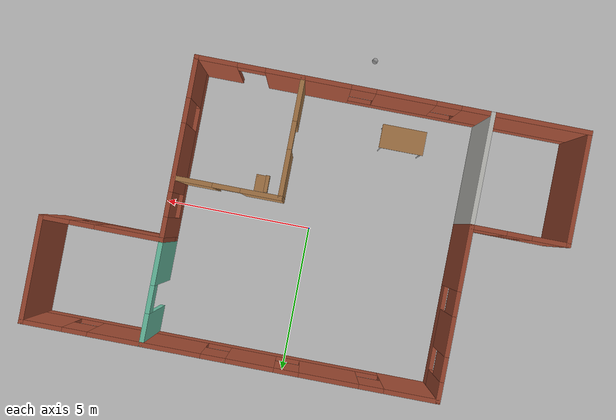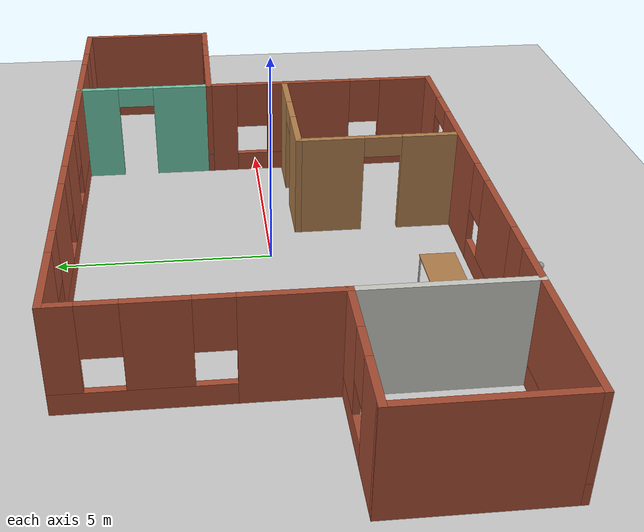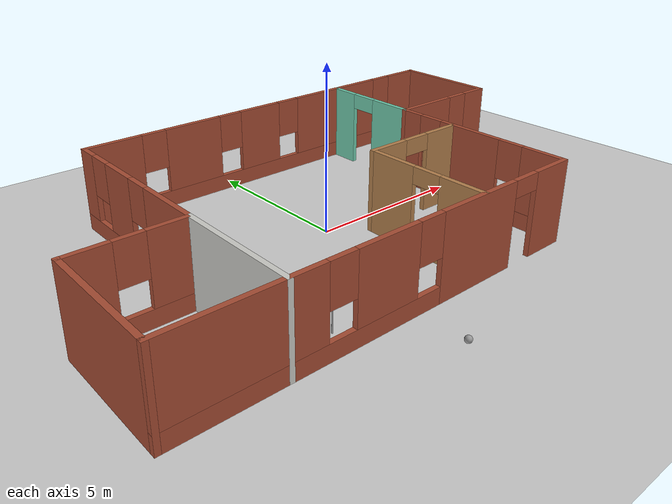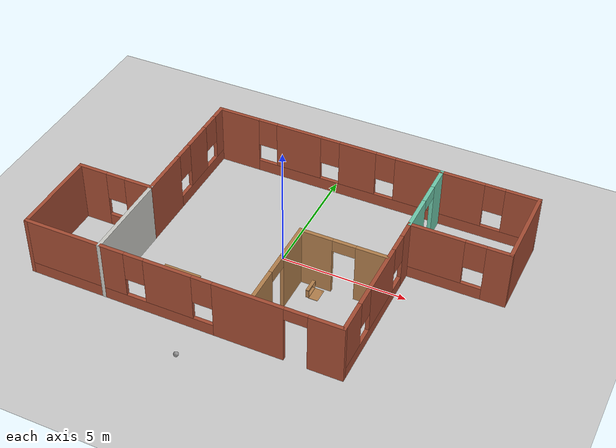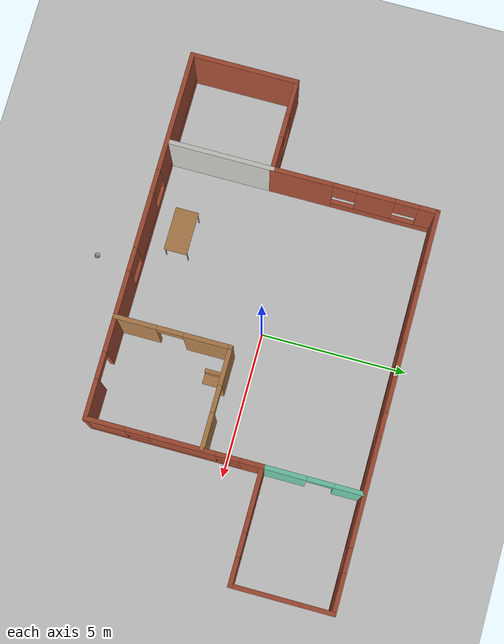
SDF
<sdf version="1.6">
 <world name="default">
  <light name="sun" type="directional">
   <pose>0 0 10 0 -0 0</pose>
   <diffuse>0.8 0.8 0.8 1</diffuse>
   <specular>0.2 0.2 0.2 1</specular>
   <attenuation>
    <range>1000</range>
    <constant>0.9</constant>
    <linear>0.01</linear>
    <quadratic>0.001</quadratic>
   </attenuation>
   <direction>-0.5 0.1 -0.9</direction>
  </light>
  <model name="ground_plane">
   <static>1</static>
   <link name="link">
    <collision name="collision">
     <geometry><plane><normal>0 0 1</normal><size>100 100</size></plane></geometry>
     <surface>
      <contact><collide_bitmask>65535</collide_bitmask></contact>
      <friction><ode><mu>100</mu><mu2>50</mu2></ode></friction>
     </surface>
    </collision>
    <visual name="visual">
     <cast_shadows>0</cast_shadows>
     <geometry><plane><normal>0 0 1</normal><size>100 100</size></plane></geometry>
     <material>
      <script><uri>file://media/materials/scripts/gazebo.material</uri><name>Gazebo/Grey</name></script>
     </material>
    </visual>
   </link>
  </model>
  <gravity>0 0 -9.8</gravity>
  <magnetic_field>6e-06 2.3e-05 -4.2e-05</magnetic_field>
  <atmosphere type="adiabatic"/>
  <physics name="default_physics" default="0" type="ode">
   <max_step_size>0.001</max_step_size>
   <real_time_factor>1</real_time_factor>
   <real_time_update_rate>1000</real_time_update_rate>
  </physics>
  <scene><ambient>0.4 0.4 0.4 1</ambient><background>0.7 0.7 0.7 1</background><shadows>1</shadows></scene>
  <spherical_coordinates>
   <surface_model>EARTH_WGS84</surface_model>
   <latitude_deg>0</latitude_deg>
   <longitude_deg>0</longitude_deg>
   <elevation>0</elevation>
   <heading_deg>0</heading_deg>
  </spherical_coordinates>
  <model name="my_world">
   <pose>0.125 -0.01 0 0 -0 0</pose>
   <link name="Wall_0">
    <pose>-5.125 1.8 0 0 -0 1.5708</pose>
    <visual name="Wall_0_Visual_0">
     <pose>-1.79844 0 1.25 0 -0 0</pose>
     <geometry><box><size>2.15312 0.15 2.5</size></box></geometry>
     <material>
      <script><uri>file://media/materials/scripts/gazebo.material</uri><name>Gazebo/Bricks</name></script>
      <ambient>1 1 1 1</ambient>
     </material>
     <meta><layer>0</layer></meta>
    </visual>
    <collision name="Wall_0_Collision_0">
     <geometry><box><size>2.15312 0.15 2.5</size></box></geometry>
     <pose>-1.79844 0 1.25 0 -0 0</pose>
    </collision>
    <visual name="Wall_0_Visual_1">
     <pose>1.07656 0 0.25 0 -0 0</pose>
     <geometry><box><size>3.59688 0.15 0.5</size></box></geometry>
     <material>
      <script><uri>file://media/materials/scripts/gazebo.material</uri><name>Gazebo/Bricks</name></script>
      <ambient>1 1 1 1</ambient>
     </material>
     <meta><layer>0</layer></meta>
    </visual>
    <collision name="Wall_0_Collision_1">
     <geometry><box><size>3.59688 0.15 0.5</size></box></geometry>
     <pose>1.07656 0 0.25 0 -0 0</pose>
    </collision>
    <visual name="Wall_0_Visual_2">
     <pose>0.727519 0 1.5 0 -0 0</pose>
     <geometry><box><size>1.29881 0.15 2</size></box></geometry>
     <material>
      <script><uri>file://media/materials/scripts/gazebo.material</uri><name>Gazebo/Bricks</name></script>
      <ambient>1 1 1 1</ambient>
     </material>
     <meta><layer>0</layer></meta>
    </visual>
    <collision name="Wall_0_Collision_2">
     <geometry><box><size>1.29881 0.15 2</size></box></geometry>
     <pose>0.727519 0 1.5 0 -0 0</pose>
    </collision>
    <visual name="Wall_0_Visual_3">
     <pose>2.52596 0 1.5 0 -0 0</pose>
     <geometry><box><size>0.698078 0.15 2</size></box></geometry>
     <material>
      <script><uri>file://media/materials/scripts/gazebo.material</uri><name>Gazebo/Bricks</name></script>
      <ambient>1 1 1 1</ambient>
     </material>
     <meta><layer>0</layer></meta>
    </visual>
    <collision name="Wall_0_Collision_3">
     <geometry><box><size>0.698078 0.15 2</size></box></geometry>
     <pose>2.52596 0 1.5 0 -0 0</pose>
    </collision>
    <visual name="Wall_0_Visual_4">
     <pose>-0.321885 0 1.9 0 -0 0</pose>
     <geometry><box><size>0.8 0.15 1.2</size></box></geometry>
     <material>
      <script><uri>file://media/materials/scripts/gazebo.material</uri><name>Gazebo/Bricks</name></script>
      <ambient>1 1 1 1</ambient>
     </material>
     <meta><layer>0</layer></meta>
    </visual>
    <collision name="Wall_0_Collision_4">
     <geometry><box><size>0.8 0.15 1.2</size></box></geometry>
     <pose>-0.321885 0 1.9 0 -0 0</pose>
    </collision>
    <visual name="Wall_0_Visual_5">
     <pose>1.77692 0 1.9 0 -0 0</pose>
     <geometry><box><size>0.8 0.15 1.2</size></box></geometry>
     <material>
      <script><uri>file://media/materials/scripts/gazebo.material</uri><name>Gazebo/Bricks</name></script>
      <ambient>1 1 1 1</ambient>
     </material>
     <meta><layer>0</layer></meta>
    </visual>
    <collision name="Wall_0_Collision_5">
     <geometry><box><size>0.8 0.15 1.2</size></box></geometry>
     <pose>1.77692 0 1.9 0 -0 0</pose>
    </collision>
   </link>
   <link name="Wall_10">
    <pose>4.375 2.925 0 0 -0 1.5708</pose>
    <visual name="Wall_10_Visual_0">
     <pose>-0.98392 0 1.25 0 -0 0</pose>
     <geometry><box><size>1.53216 0.15 2.5</size></box></geometry>
     <material>
      <script><uri>file://media/materials/scripts/gazebo.material</uri><name>Gazebo/Grey</name></script>
      <ambient>0.435294 0.796078 0.67451 1</ambient>
     </material>
     <meta><layer>0</layer></meta>
    </visual>
    <collision name="Wall_10_Collision_0">
     <geometry><box><size>1.53216 0.15 2.5</size></box></geometry>
     <pose>-0.98392 0 1.25 0 -0 0</pose>
    </collision>
    <visual name="Wall_10_Visual_1">
     <pose>1.21608 0 1.25 0 -0 0</pose>
     <geometry><box><size>1.06784 0.15 2.5</size></box></geometry>
     <material>
      <script><uri>file://media/materials/scripts/gazebo.material</uri><name>Gazebo/Grey</name></script>
      <ambient>0.435294 0.796078 0.67451 1</ambient>
     </material>
     <meta><layer>0</layer></meta>
    </visual>
    <collision name="Wall_10_Collision_1">
     <geometry><box><size>1.06784 0.15 2.5</size></box></geometry>
     <pose>1.21608 0 1.25 0 -0 0</pose>
    </collision>
    <visual name="Wall_10_Visual_2">
     <pose>0.232161 0 2.25 0 -0 0</pose>
     <geometry><box><size>0.9 0.15 0.5</size></box></geometry>
     <material>
      <script><uri>file://media/materials/scripts/gazebo.material</uri><name>Gazebo/Grey</name></script>
      <ambient>0.435294 0.796078 0.67451 1</ambient>
     </material>
     <meta><layer>0</layer></meta>
    </visual>
    <collision name="Wall_10_Collision_2">
     <geometry><box><size>0.9 0.15 0.5</size></box></geometry>
     <pose>0.232161 0 2.25 0 -0 0</pose>
    </collision>
   </link>
   <link name="Wall_12">
    <collision name="Wall_12_Collision">
     <geometry><box><size>3.75 0.15 2.5</size></box></geometry>
     <pose>0 0 1.25 0 -0 0</pose>
    </collision>
    <visual name="Wall_12_Visual">
     <pose>0 0 1.25 0 -0 0</pose>
     <geometry><box><size>3.75 0.15 2.5</size></box></geometry>
     <material>
      <script><uri>file://media/materials/scripts/gazebo.material</uri><name>Gazebo/CeilingTiled</name></script>
      <ambient>1 1 1 1</ambient>
     </material>
     <meta><layer>0</layer></meta>
    </visual>
    <pose>-5.125 -2.8 0 0 0 -1.5708</pose>
   </link>
   <link name="Wall_14">
    <pose>2.6376 -0.743123 0 0 -0 3.14159</pose>
    <visual name="Wall_14_Visual_0">
     <pose>-1.12421 0 1.25 0 -0 0</pose>
     <geometry><box><size>1.25158 0.15 2.5</size></box></geometry>
     <material>
      <script><uri>file://media/materials/scripts/gazebo.material</uri><name>Gazebo/Wood</name></script>
      <ambient>1 1 1 1</ambient>
     </material>
     <meta><layer>0</layer></meta>
    </visual>
    <collision name="Wall_14_Collision_0">
     <geometry><box><size>1.25158 0.15 2.5</size></box></geometry>
     <pose>-1.12421 0 1.25 0 -0 0</pose>
    </collision>
    <visual name="Wall_14_Visual_1">
     <pose>1.07579 0 1.25 0 -0 0</pose>
     <geometry><box><size>1.34842 0.15 2.5</size></box></geometry>
     <material>
      <script><uri>file://media/materials/scripts/gazebo.material</uri><name>Gazebo/Wood</name></script>
      <ambient>1 1 1 1</ambient>
     </material>
     <meta><layer>0</layer></meta>
    </visual>
    <collision name="Wall_14_Collision_1">
     <geometry><box><size>1.34842 0.15 2.5</size></box></geometry>
     <pose>1.07579 0 1.25 0 -0 0</pose>
    </collision>
    <visual name="Wall_14_Visual_2">
     <pose>-0.048424 0 2.25 0 -0 0</pose>
     <geometry><box><size>0.9 0.15 0.5</size></box></geometry>
     <material>
      <script><uri>file://media/materials/scripts/gazebo.material</uri><name>Gazebo/Wood</name></script>
      <ambient>1 1 1 1</ambient>
     </material>
     <meta><layer>0</layer></meta>
    </visual>
    <collision name="Wall_14_Collision_2">
     <geometry><box><size>0.9 0.15 0.5</size></box></geometry>
     <pose>-0.048424 0 2.25 0 -0 0</pose>
    </collision>
   </link>
   <link name="Wall_15">
    <pose>0.962602 -2.66812 0 0 0 -1.5708</pose>
    <visual name="Wall_15_Visual_0">
     <pose>-1.18182 0 1.25 0 -0 0</pose>
     <geometry><box><size>1.63636 0.15 2.5</size></box></geometry>
     <material>
      <script><uri>file://media/materials/scripts/gazebo.material</uri><name>Gazebo/Wood</name></script>
      <ambient>1 1 1 1</ambient>
     </material>
     <meta><layer>0</layer></meta>
    </visual>
    <collision name="Wall_15_Collision_0">
     <geometry><box><size>1.63636 0.15 2.5</size></box></geometry>
     <pose>-1.18182 0 1.25 0 -0 0</pose>
    </collision>
    <visual name="Wall_15_Visual_1">
     <pose>1.26818 0 1.25 0 -0 0</pose>
     <geometry><box><size>1.46364 0.15 2.5</size></box></geometry>
     <material>
      <script><uri>file://media/materials/scripts/gazebo.material</uri><name>Gazebo/Wood</name></script>
      <ambient>1 1 1 1</ambient>
     </material>
     <meta><layer>0</layer></meta>
    </visual>
    <collision name="Wall_15_Collision_1">
     <geometry><box><size>1.46364 0.15 2.5</size></box></geometry>
     <pose>1.26818 0 1.25 0 -0 0</pose>
    </collision>
    <visual name="Wall_15_Visual_2">
     <pose>0.086357 0 2.25 0 -0 0</pose>
     <geometry><box><size>0.9 0.15 0.5</size></box></geometry>
     <material>
      <script><uri>file://media/materials/scripts/gazebo.material</uri><name>Gazebo/Wood</name></script>
      <ambient>1 1 1 1</ambient>
     </material>
     <meta><layer>0</layer></meta>
    </visual>
    <collision name="Wall_15_Collision_2">
     <geometry><box><size>0.9 0.15 0.5</size></box></geometry>
     <pose>0.086357 0 2.25 0 -0 0</pose>
    </collision>
   </link>
   <link name="Wall_2">
    <pose>1.55 4.6 0 0 -0 0</pose>
    <visual name="Wall_2_Visual_0">
     <pose>-5.84038 0 1.25 0 -0 0</pose>
     <geometry><box><size>1.81925 0.15 2.5</size></box></geometry>
     <material>
      <script><uri>file://media/materials/scripts/gazebo.material</uri><name>Gazebo/Bricks</name></script>
      <ambient>1 1 1 1</ambient>
     </material>
     <meta><layer>0</layer></meta>
    </visual>
    <collision name="Wall_2_Collision_0">
     <geometry><box><size>1.81925 0.15 2.5</size></box></geometry>
     <pose>-5.84038 0 1.25 0 -0 0</pose>
    </collision>
    <visual name="Wall_2_Visual_1">
     <pose>0.909623 0 0.25 0 -0 0</pose>
     <geometry><box><size>11.6808 0.15 0.5</size></box></geometry>
     <material>
      <script><uri>file://media/materials/scripts/gazebo.material</uri><name>Gazebo/Bricks</name></script>
      <ambient>1 1 1 1</ambient>
     </material>
     <meta><layer>0</layer></meta>
    </visual>
    <collision name="Wall_2_Collision_1">
     <geometry><box><size>11.6808 0.15 0.5</size></box></geometry>
     <pose>0.909623 0 0.25 0 -0 0</pose>
    </collision>
    <visual name="Wall_2_Visual_2">
     <pose>-3.16653 0 1.5 0 -0 0</pose>
     <geometry><box><size>1.92845 0.15 2</size></box></geometry>
     <material>
      <script><uri>file://media/materials/scripts/gazebo.material</uri><name>Gazebo/Bricks</name></script>
      <ambient>1 1 1 1</ambient>
     </material>
     <meta><layer>0</layer></meta>
    </visual>
    <collision name="Wall_2_Collision_2">
     <geometry><box><size>1.92845 0.15 2</size></box></geometry>
     <pose>-3.16653 0 1.5 0 -0 0</pose>
    </collision>
    <visual name="Wall_2_Visual_3">
     <pose>-0.63047 0 1.5 0 -0 0</pose>
     <geometry><box><size>1.54367 0.15 2</size></box></geometry>
     <material>
      <script><uri>file://media/materials/scripts/gazebo.material</uri><name>Gazebo/Bricks</name></script>
      <ambient>1 1 1 1</ambient>
     </material>
     <meta><layer>0</layer></meta>
    </visual>
    <collision name="Wall_2_Collision_3">
     <geometry><box><size>1.54367 0.15 2</size></box></geometry>
     <pose>-0.63047 0 1.5 0 -0 0</pose>
    </collision>
    <visual name="Wall_2_Visual_4">
     <pose>2.75386 0 1.5 0 -0 0</pose>
     <geometry><box><size>3.62499 0.15 2</size></box></geometry>
     <material>
      <script><uri>file://media/materials/scripts/gazebo.material</uri><name>Gazebo/Bricks</name></script>
      <ambient>1 1 1 1</ambient>
     </material>
     <meta><layer>0</layer></meta>
    </visual>
    <collision name="Wall_2_Collision_4">
     <geometry><box><size>3.62499 0.15 2</size></box></geometry>
     <pose>2.75386 0 1.5 0 -0 0</pose>
    </collision>
    <visual name="Wall_2_Visual_5">
     <pose>6.05818 0 1.5 0 -0 0</pose>
     <geometry><box><size>1.38365 0.15 2</size></box></geometry>
     <material>
      <script><uri>file://media/materials/scripts/gazebo.material</uri><name>Gazebo/Bricks</name></script>
      <ambient>1 1 1 1</ambient>
     </material>
     <meta><layer>0</layer></meta>
    </visual>
    <collision name="Wall_2_Collision_5">
     <geometry><box><size>1.38365 0.15 2</size></box></geometry>
     <pose>6.05818 0 1.5 0 -0 0</pose>
    </collision>
    <visual name="Wall_2_Visual_6">
     <pose>-4.53075 0 1.9 0 -0 0</pose>
     <geometry><box><size>0.8 0.15 1.2</size></box></geometry>
     <material>
      <script><uri>file://media/materials/scripts/gazebo.material</uri><name>Gazebo/Bricks</name></script>
      <ambient>1 1 1 1</ambient>
     </material>
     <meta><layer>0</layer></meta>
    </visual>
    <collision name="Wall_2_Collision_6">
     <geometry><box><size>0.8 0.15 1.2</size></box></geometry>
     <pose>-4.53075 0 1.9 0 -0 0</pose>
    </collision>
    <visual name="Wall_2_Visual_7">
     <pose>-1.8023 0 1.9 0 -0 0</pose>
     <geometry><box><size>0.8 0.15 1.2</size></box></geometry>
     <material>
      <script><uri>file://media/materials/scripts/gazebo.material</uri><name>Gazebo/Bricks</name></script>
      <ambient>1 1 1 1</ambient>
     </material>
     <meta><layer>0</layer></meta>
    </visual>
    <collision name="Wall_2_Collision_7">
     <geometry><box><size>0.8 0.15 1.2</size></box></geometry>
     <pose>-1.8023 0 1.9 0 -0 0</pose>
    </collision>
    <visual name="Wall_2_Visual_8">
     <pose>0.541365 0 1.9 0 -0 0</pose>
     <geometry><box><size>0.8 0.15 1.2</size></box></geometry>
     <material>
      <script><uri>file://media/materials/scripts/gazebo.material</uri><name>Gazebo/Bricks</name></script>
      <ambient>1 1 1 1</ambient>
     </material>
     <meta><layer>0</layer></meta>
    </visual>
    <collision name="Wall_2_Collision_8">
     <geometry><box><size>0.8 0.15 1.2</size></box></geometry>
     <pose>0.541365 0 1.9 0 -0 0</pose>
    </collision>
    <visual name="Wall_2_Visual_9">
     <pose>4.96635 0 1.9 0 -0 0</pose>
     <geometry><box><size>0.8 0.15 1.2</size></box></geometry>
     <material>
      <script><uri>file://media/materials/scripts/gazebo.material</uri><name>Gazebo/Bricks</name></script>
      <ambient>1 1 1 1</ambient>
     </material>
     <meta><layer>0</layer></meta>
    </visual>
    <collision name="Wall_2_Collision_9">
     <geometry><box><size>0.8 0.15 1.2</size></box></geometry>
     <pose>4.96635 0 1.9 0 -0 0</pose>
    </collision>
   </link>
   <link name="Wall_3">
    <collision name="Wall_3_Collision">
     <geometry><box><size>3.5 0.15 2.5</size></box></geometry>
     <pose>0 0 1.25 0 -0 0</pose>
    </collision>
    <visual name="Wall_3_Visual">
     <pose>0 0 1.25 0 -0 0</pose>
     <geometry><box><size>3.5 0.15 2.5</size></box></geometry>
     <material>
      <script><uri>file://media/materials/scripts/gazebo.material</uri><name>Gazebo/Bricks</name></script>
      <ambient>1 1 1 1</ambient>
     </material>
     <meta><layer>0</layer></meta>
    </visual>
    <pose>8.225 2.925 0 0 0 -1.5708</pose>
   </link>
   <link name="Wall_4">
    <pose>6.3 1.25 0 0 -0 3.14159</pose>
    <visual name="Wall_4_Visual_0">
     <pose>-1.50931 0 1.25 0 -0 0</pose>
     <geometry><box><size>0.981378 0.15 2.5</size></box></geometry>
     <material>
      <script><uri>file://media/materials/scripts/gazebo.material</uri><name>Gazebo/Bricks</name></script>
      <ambient>1 1 1 1</ambient>
     </material>
     <meta><layer>0</layer></meta>
    </visual>
    <collision name="Wall_4_Collision_0">
     <geometry><box><size>0.981378 0.15 2.5</size></box></geometry>
     <pose>-1.50931 0 1.25 0 -0 0</pose>
    </collision>
    <visual name="Wall_4_Visual_1">
     <pose>0.490689 0 0.25 0 -0 0</pose>
     <geometry><box><size>3.01862 0.15 0.5</size></box></geometry>
     <material>
      <script><uri>file://media/materials/scripts/gazebo.material</uri><name>Gazebo/Bricks</name></script>
      <ambient>1 1 1 1</ambient>
     </material>
     <meta><layer>0</layer></meta>
    </visual>
    <collision name="Wall_4_Collision_1">
     <geometry><box><size>3.01862 0.15 0.5</size></box></geometry>
     <pose>0.490689 0 0.25 0 -0 0</pose>
    </collision>
    <visual name="Wall_4_Visual_2">
     <pose>0.890689 0 1.5 0 -0 0</pose>
     <geometry><box><size>2.21862 0.15 2</size></box></geometry>
     <material>
      <script><uri>file://media/materials/scripts/gazebo.material</uri><name>Gazebo/Bricks</name></script>
      <ambient>1 1 1 1</ambient>
     </material>
     <meta><layer>0</layer></meta>
    </visual>
    <collision name="Wall_4_Collision_2">
     <geometry><box><size>2.21862 0.15 2</size></box></geometry>
     <pose>0.890689 0 1.5 0 -0 0</pose>
    </collision>
    <visual name="Wall_4_Visual_3">
     <pose>-0.618622 0 1.9 0 -0 0</pose>
     <geometry><box><size>0.8 0.15 1.2</size></box></geometry>
     <material>
      <script><uri>file://media/materials/scripts/gazebo.material</uri><name>Gazebo/Bricks</name></script>
      <ambient>1 1 1 1</ambient>
     </material>
     <meta><layer>0</layer></meta>
    </visual>
    <collision name="Wall_4_Collision_3">
     <geometry><box><size>0.8 0.15 1.2</size></box></geometry>
     <pose>-0.618622 0 1.9 0 -0 0</pose>
    </collision>
   </link>
   <link name="Wall_5">
    <pose>4.375 -1.675 0 0 0 -1.5708</pose>
    <visual name="Wall_5_Visual_0">
     <pose>-2.59444 0 1.25 0 -0 0</pose>
     <geometry><box><size>0.81111 0.15 2.5</size></box></geometry>
     <material>
      <script><uri>file://media/materials/scripts/gazebo.material</uri><name>Gazebo/Bricks</name></script>
      <ambient>1 1 1 1</ambient>
     </material>
     <meta><layer>0</layer></meta>
    </visual>
    <collision name="Wall_5_Collision_0">
     <geometry><box><size>0.81111 0.15 2.5</size></box></geometry>
     <pose>-2.59444 0 1.25 0 -0 0</pose>
    </collision>
    <visual name="Wall_5_Visual_1">
     <pose>0.405555 0 0.25 0 -0 0</pose>
     <geometry><box><size>5.18889 0.15 0.5</size></box></geometry>
     <material>
      <script><uri>file://media/materials/scripts/gazebo.material</uri><name>Gazebo/Bricks</name></script>
      <ambient>1 1 1 1</ambient>
     </material>
     <meta><layer>0</layer></meta>
    </visual>
    <collision name="Wall_5_Collision_1">
     <geometry><box><size>5.18889 0.15 0.5</size></box></geometry>
     <pose>0.405555 0 0.25 0 -0 0</pose>
    </collision>
    <visual name="Wall_5_Visual_2">
     <pose>-0.284745 0 1.5 0 -0 0</pose>
     <geometry><box><size>2.20829 0.15 2</size></box></geometry>
     <material>
      <script><uri>file://media/materials/scripts/gazebo.material</uri><name>Gazebo/Bricks</name></script>
      <ambient>1 1 1 1</ambient>
     </material>
     <meta><layer>0</layer></meta>
    </visual>
    <collision name="Wall_5_Collision_2">
     <geometry><box><size>2.20829 0.15 2</size></box></geometry>
     <pose>-0.284745 0 1.5 0 -0 0</pose>
    </collision>
    <visual name="Wall_5_Visual_3">
     <pose>2.3097 0 1.5 0 -0 0</pose>
     <geometry><box><size>1.3806 0.15 2</size></box></geometry>
     <material>
      <script><uri>file://media/materials/scripts/gazebo.material</uri><name>Gazebo/Bricks</name></script>
      <ambient>1 1 1 1</ambient>
     </material>
     <meta><layer>0</layer></meta>
    </visual>
    <collision name="Wall_5_Collision_3">
     <geometry><box><size>1.3806 0.15 2</size></box></geometry>
     <pose>2.3097 0 1.5 0 -0 0</pose>
    </collision>
    <visual name="Wall_5_Visual_4">
     <pose>-1.78889 0 1.9 0 -0 0</pose>
     <geometry><box><size>0.8 0.15 1.2</size></box></geometry>
     <material>
      <script><uri>file://media/materials/scripts/gazebo.material</uri><name>Gazebo/Bricks</name></script>
      <ambient>1 1 1 1</ambient>
     </material>
     <meta><layer>0</layer></meta>
    </visual>
    <collision name="Wall_5_Collision_4">
     <geometry><box><size>0.8 0.15 1.2</size></box></geometry>
     <pose>-1.78889 0 1.9 0 -0 0</pose>
    </collision>
    <visual name="Wall_5_Visual_5">
     <pose>1.2194 0 1.9 0 -0 0</pose>
     <geometry><box><size>0.8 0.15 1.2</size></box></geometry>
     <material>
      <script><uri>file://media/materials/scripts/gazebo.material</uri><name>Gazebo/Bricks</name></script>
      <ambient>1 1 1 1</ambient>
     </material>
     <meta><layer>0</layer></meta>
    </visual>
    <collision name="Wall_5_Collision_5">
     <geometry><box><size>0.8 0.15 1.2</size></box></geometry>
     <pose>1.2194 0 1.9 0 -0 0</pose>
    </collision>
   </link>
   <link name="Wall_6">
    <pose>-1.925 -4.6 0 0 -0 3.14159</pose>
    <visual name="Wall_6_Visual_0">
     <pose>-5.68303 0 1.25 0 -0 0</pose>
     <geometry><box><size>1.38393 0.15 2.5</size></box></geometry>
     <material>
      <script><uri>file://media/materials/scripts/gazebo.material</uri><name>Gazebo/Bricks</name></script>
      <ambient>1 1 1 1</ambient>
     </material>
     <meta><layer>0</layer></meta>
    </visual>
    <collision name="Wall_6_Collision_0">
     <geometry><box><size>1.38393 0.15 2.5</size></box></geometry>
     <pose>-5.68303 0 1.25 0 -0 0</pose>
    </collision>
    <visual name="Wall_6_Visual_1">
     <pose>-2.71459 0 1.25 0 -0 0</pose>
     <geometry><box><size>2.75295 0.15 2.5</size></box></geometry>
     <material>
      <script><uri>file://media/materials/scripts/gazebo.material</uri><name>Gazebo/Bricks</name></script>
      <ambient>1 1 1 1</ambient>
     </material>
     <meta><layer>0</layer></meta>
    </visual>
    <collision name="Wall_6_Collision_1">
     <geometry><box><size>2.75295 0.15 2.5</size></box></geometry>
     <pose>-2.71459 0 1.25 0 -0 0</pose>
    </collision>
    <visual name="Wall_6_Visual_2">
     <pose>2.51844 0 0.25 0 -0 0</pose>
     <geometry><box><size>7.71311 0.15 0.5</size></box></geometry>
     <material>
      <script><uri>file://media/materials/scripts/gazebo.material</uri><name>Gazebo/Bricks</name></script>
      <ambient>1 1 1 1</ambient>
     </material>
     <meta><layer>0</layer></meta>
    </visual>
    <collision name="Wall_6_Collision_2">
     <geometry><box><size>7.71311 0.15 0.5</size></box></geometry>
     <pose>2.51844 0 0.25 0 -0 0</pose>
    </collision>
    <visual name="Wall_6_Visual_3">
     <pose>0.426111 0 1.5 0 -0 0</pose>
     <geometry><box><size>1.92845 0.15 2</size></box></geometry>
     <material>
      <script><uri>file://media/materials/scripts/gazebo.material</uri><name>Gazebo/Bricks</name></script>
      <ambient>1 1 1 1</ambient>
     </material>
     <meta><layer>0</layer></meta>
    </visual>
    <collision name="Wall_6_Collision_3">
     <geometry><box><size>1.92845 0.15 2</size></box></geometry>
     <pose>0.426111 0 1.5 0 -0 0</pose>
    </collision>
    <visual name="Wall_6_Visual_4">
     <pose>4.28267 0 1.5 0 -0 0</pose>
     <geometry><box><size>4.18466 0.15 2</size></box></geometry>
     <material>
      <script><uri>file://media/materials/scripts/gazebo.material</uri><name>Gazebo/Bricks</name></script>
      <ambient>1 1 1 1</ambient>
     </material>
     <meta><layer>0</layer></meta>
    </visual>
    <collision name="Wall_6_Collision_4">
     <geometry><box><size>4.18466 0.15 2</size></box></geometry>
     <pose>4.28267 0 1.5 0 -0 0</pose>
    </collision>
    <visual name="Wall_6_Visual_5">
     <pose>-0.938114 0 1.9 0 -0 0</pose>
     <geometry><box><size>0.8 0.15 1.2</size></box></geometry>
     <material>
      <script><uri>file://media/materials/scripts/gazebo.material</uri><name>Gazebo/Bricks</name></script>
      <ambient>1 1 1 1</ambient>
     </material>
     <meta><layer>0</layer></meta>
    </visual>
    <collision name="Wall_6_Collision_5">
     <geometry><box><size>0.8 0.15 1.2</size></box></geometry>
     <pose>-0.938114 0 1.9 0 -0 0</pose>
    </collision>
    <visual name="Wall_6_Visual_6">
     <pose>1.79034 0 1.9 0 -0 0</pose>
     <geometry><box><size>0.8 0.15 1.2</size></box></geometry>
     <material>
      <script><uri>file://media/materials/scripts/gazebo.material</uri><name>Gazebo/Bricks</name></script>
      <ambient>1 1 1 1</ambient>
     </material>
     <meta><layer>0</layer></meta>
    </visual>
    <collision name="Wall_6_Collision_6">
     <geometry><box><size>0.8 0.15 1.2</size></box></geometry>
     <pose>1.79034 0 1.9 0 -0 0</pose>
    </collision>
    <visual name="Wall_6_Visual_7">
     <pose>-4.54107 0 2.25 0 -0 0</pose>
     <geometry><box><size>0.9 0.15 0.5</size></box></geometry>
     <material>
      <script><uri>file://media/materials/scripts/gazebo.material</uri><name>Gazebo/Bricks</name></script>
      <ambient>1 1 1 1</ambient>
     </material>
     <meta><layer>0</layer></meta>
    </visual>
    <collision name="Wall_6_Collision_7">
     <geometry><box><size>0.9 0.15 0.5</size></box></geometry>
     <pose>-4.54107 0 2.25 0 -0 0</pose>
    </collision>
   </link>
   <link name="Wall_7">
    <collision name="Wall_7_Collision">
     <geometry><box><size>3.75 0.15 2.5</size></box></geometry>
     <pose>0 0 1.25 0 -0 0</pose>
    </collision>
    <visual name="Wall_7_Visual">
     <pose>0 0 1.25 0 -0 0</pose>
     <geometry><box><size>3.75 0.15 2.5</size></box></geometry>
     <material>
      <script><uri>file://media/materials/scripts/gazebo.material</uri><name>Gazebo/Bricks</name></script>
      <ambient>1 1 1 1</ambient>
     </material>
     <meta><layer>0</layer></meta>
    </visual>
    <pose>-8.225 -2.8 0 0 -0 1.5708</pose>
   </link>
   <link name="Wall_8">
    <pose>-6.675 -1 0 0 -0 0</pose>
    <visual name="Wall_8_Visual_0">
     <pose>-1.00183 0 1.25 0 -0 0</pose>
     <geometry><box><size>1.24633 0.15 2.5</size></box></geometry>
     <material>
      <script><uri>file://media/materials/scripts/gazebo.material</uri><name>Gazebo/Bricks</name></script>
      <ambient>1 1 1 1</ambient>
     </material>
     <meta><layer>0</layer></meta>
    </visual>
    <collision name="Wall_8_Collision_0">
     <geometry><box><size>1.24633 0.15 2.5</size></box></geometry>
     <pose>-1.00183 0 1.25 0 -0 0</pose>
    </collision>
    <visual name="Wall_8_Visual_1">
     <pose>0.623167 0 0.25 0 -0 0</pose>
     <geometry><box><size>2.00367 0.15 0.5</size></box></geometry>
     <material>
      <script><uri>file://media/materials/scripts/gazebo.material</uri><name>Gazebo/Bricks</name></script>
      <ambient>1 1 1 1</ambient>
     </material>
     <meta><layer>0</layer></meta>
    </visual>
    <collision name="Wall_8_Collision_1">
     <geometry><box><size>2.00367 0.15 0.5</size></box></geometry>
     <pose>0.623167 0 0.25 0 -0 0</pose>
    </collision>
    <visual name="Wall_8_Visual_2">
     <pose>1.02317 0 1.5 0 -0 0</pose>
     <geometry><box><size>1.20367 0.15 2</size></box></geometry>
     <material>
      <script><uri>file://media/materials/scripts/gazebo.material</uri><name>Gazebo/Bricks</name></script>
      <ambient>1 1 1 1</ambient>
     </material>
     <meta><layer>0</layer></meta>
    </visual>
    <collision name="Wall_8_Collision_2">
     <geometry><box><size>1.20367 0.15 2</size></box></geometry>
     <pose>1.02317 0 1.5 0 -0 0</pose>
    </collision>
    <visual name="Wall_8_Visual_3">
     <pose>0.021334 0 1.9 0 -0 0</pose>
     <geometry><box><size>0.8 0.15 1.2</size></box></geometry>
     <material>
      <script><uri>file://media/materials/scripts/gazebo.material</uri><name>Gazebo/Bricks</name></script>
      <ambient>1 1 1 1</ambient>
     </material>
     <meta><layer>0</layer></meta>
    </visual>
    <collision name="Wall_8_Collision_3">
     <geometry><box><size>0.8 0.15 1.2</size></box></geometry>
     <pose>0.021334 0 1.9 0 -0 0</pose>
    </collision>
   </link>
   <static>1</static>
  </model>
  <model name="wooden_case">
   <link name="base">
    <pose>0 0 0.024 0 -0 0</pose>
    <inertial>
     <pose>-0.022184 0 0.171592 0 -0 0</pose>
     <mass>3.96264</mass>
     <inertia>
      <ixx>0.213536</ixx>
      <ixy>0</ixy>
      <ixz>0.000779377</ixz>
      <iyy>0.0708943</iyy>
      <iyz>0</iyz>
      <izz>0.154604</izz>
     </inertia>
    </inertial>
    <collision name="collision_back">
     <pose>-0.053975 0 0.1778 0 -0 0</pose>
     <geometry><box><size>0.01905 0.5461 0.3175</size></box></geometry>
     <surface>
      <contact>
       <poissons_ratio>0.347</poissons_ratio>
       <elastic_modulus>8.8e+09</elastic_modulus>
       <ode><kp>100000</kp><kd>100</kd><max_vel>100</max_vel><min_depth>0.001</min_depth></ode>
      </contact>
      <friction>
       <torsional>
        <coefficient>1</coefficient>
        <use_patch_radius>0</use_patch_radius>
        <surface_radius>0.01</surface_radius>
       </torsional>
      </friction>
     </surface>
    </collision>
    <visual name="visual_back">
     <pose>-0.053975 0 0.1778 0 -0 0</pose>
     <geometry><box><size>0.01905 0.5461 0.3175</size></box></geometry>
     <material>
      <script><uri>file://media/materials/scripts/gazebo.material</uri><name>Gazebo/Wood</name></script>
     </material>
    </visual>
    <collision name="collision_bottom">
     <pose>0 0 0.009525 0 -0 0</pose>
     <geometry><box><size>0.127 0.5842 0.01905</size></box></geometry>
     <surface>
      <contact>
       <poissons_ratio>0.347</poissons_ratio>
       <elastic_modulus>8.8e+09</elastic_modulus>
       <ode><kp>100000</kp><kd>100</kd><max_vel>100</max_vel><min_depth>0.001</min_depth></ode>
      </contact>
      <friction>
       <torsional>
        <coefficient>1</coefficient>
        <use_patch_radius>0</use_patch_radius>
        <surface_radius>0.01</surface_radius>
       </torsional>
      </friction>
     </surface>
    </collision>
    <visual name="visual_bottom">
     <pose>0 0 0.009525 0 -0 0</pose>
     <geometry><box><size>0.127 0.5842 0.01905</size></box></geometry>
     <material>
      <script><uri>file://media/materials/scripts/gazebo.material</uri><name>Gazebo/Wood</name></script>
     </material>
    </visual>
    <collision name="collision_top">
     <pose>0 0 0.346075 0 -0 0</pose>
     <geometry><box><size>0.127 0.5842 0.01905</size></box></geometry>
     <surface>
      <contact>
       <poissons_ratio>0.347</poissons_ratio>
       <elastic_modulus>8.8e+09</elastic_modulus>
       <ode><kp>100000</kp><kd>100</kd><max_vel>100</max_vel><min_depth>0.001</min_depth></ode>
      </contact>
      <friction>
       <torsional>
        <coefficient>1</coefficient>
        <use_patch_radius>0</use_patch_radius>
        <surface_radius>0.01</surface_radius>
       </torsional>
      </friction>
     </surface>
    </collision>
    <visual name="visual_top">
     <pose>0 0 0.346075 0 -0 0</pose>
     <geometry><box><size>0.127 0.5842 0.01905</size></box></geometry>
     <material>
      <script><uri>file://media/materials/scripts/gazebo.material</uri><name>Gazebo/Wood</name></script>
     </material>
    </visual>
    <collision name="collision_left">
     <pose>0 -0.282575 0.1778 0 -0 0</pose>
     <geometry><box><size>0.127 0.01905 0.3175</size></box></geometry>
     <surface>
      <contact>
       <poissons_ratio>0.347</poissons_ratio>
       <elastic_modulus>8.8e+09</elastic_modulus>
       <ode><kp>100000</kp><kd>100</kd><max_vel>100</max_vel><min_depth>0.001</min_depth></ode>
      </contact>
      <friction>
       <torsional>
        <coefficient>1</coefficient>
        <use_patch_radius>0</use_patch_radius>
        <surface_radius>0.01</surface_radius>
       </torsional>
      </friction>
     </surface>
    </collision>
    <visual name="visual_left">
     <pose>0 -0.282575 0.1778 0 -0 0</pose>
     <geometry><box><size>0.127 0.01905 0.3175</size></box></geometry>
     <material>
      <script><uri>file://media/materials/scripts/gazebo.material</uri><name>Gazebo/Wood</name></script>
     </material>
    </visual>
    <collision name="collision_right">
     <pose>0 0.282575 0.1778 0 -0 0</pose>
     <geometry><box><size>0.127 0.01905 0.3175</size></box></geometry>
     <surface>
      <contact>
       <poissons_ratio>0.347</poissons_ratio>
       <elastic_modulus>8.8e+09</elastic_modulus>
       <ode><kp>100000</kp><kd>100</kd><max_vel>100</max_vel><min_depth>0.001</min_depth></ode>
      </contact>
      <friction>
       <torsional>
        <coefficient>1</coefficient>
        <use_patch_radius>0</use_patch_radius>
        <surface_radius>0.01</surface_radius>
       </torsional>
      </friction>
     </surface>
    </collision>
    <visual name="visual_right">
     <pose>0 0.282575 0.1778 0 -0 0</pose>
     <geometry><box><size>0.127 0.01905 0.3175</size></box></geometry>
     <material>
      <script><uri>file://media/materials/scripts/gazebo.material</uri><name>Gazebo/Wood</name></script>
     </material>
    </visual>
    <collision name="collision_block_left">
     <pose>0.0095 -0.2151 -0.012 0 -0 0</pose>
     <geometry><box><size>0.108 0.05 0.024</size></box></geometry>
     <surface>
      <contact>
       <poissons_ratio>0.347</poissons_ratio>
       <elastic_modulus>8.8e+09</elastic_modulus>
       <ode><kp>100000</kp><kd>100</kd><max_vel>100</max_vel><min_depth>0.001</min_depth></ode>
      </contact>
      <friction>
       <torsional>
        <coefficient>1</coefficient>
        <use_patch_radius>0</use_patch_radius>
        <surface_radius>0.01</surface_radius>
       </torsional>
      </friction>
     </surface>
    </collision>
    <visual name="visual_block_left">
     <pose>0.0095 -0.2151 -0.012 0 -0 0</pose>
     <geometry><box><size>0.108 0.05 0.024</size></box></geometry>
     <material>
      <script><uri>file://media/materials/scripts/gazebo.material</uri><name>Gazebo/Wood</name></script>
     </material>
    </visual>
    <collision name="collision_block_right">
     <pose>0.0095 0.2151 -0.012 0 -0 0</pose>
     <geometry><box><size>0.108 0.05 0.024</size></box></geometry>
     <surface>
      <contact>
       <poissons_ratio>0.347</poissons_ratio>
       <elastic_modulus>8.8e+09</elastic_modulus>
       <ode><kp>100000</kp><kd>100</kd><max_vel>100</max_vel><min_depth>0.001</min_depth></ode>
      </contact>
      <friction>
       <torsional>
        <coefficient>1</coefficient>
        <use_patch_radius>0</use_patch_radius>
        <surface_radius>0.01</surface_radius>
       </torsional>
      </friction>
     </surface>
    </collision>
    <visual name="visual_block_right">
     <pose>0.0095 0.2151 -0.012 0 -0 0</pose>
     <geometry><box><size>0.108 0.05 0.024</size></box></geometry>
     <material>
      <script><uri>file://media/materials/scripts/gazebo.material</uri><name>Gazebo/Wood</name></script>
     </material>
    </visual>
   </link>
   <link name="lid">
    <pose>0.243775 0 0.009525 0 -0 0</pose>
    <inertial>
     <mass>1.97874</mass>
     <inertia>
      <ixx>0.0563367</ixx>
      <ixy>0</ixy>
      <ixz>0</ixz>
      <iyy>0.020911</iyy>
      <iyz>0</iyz>
      <izz>0.0771281</izz>
     </inertia>
    </inertial>
    <collision name="collision">
     <geometry><box><size>0.3556 0.5842 0.01905</size></box></geometry>
     <surface>
      <contact>
       <poissons_ratio>0.347</poissons_ratio>
       <elastic_modulus>8.8e+09</elastic_modulus>
       <ode><kp>100000</kp><kd>100</kd><max_vel>100</max_vel><min_depth>0.001</min_depth></ode>
      </contact>
      <friction>
       <torsional>
        <coefficient>1</coefficient>
        <use_patch_radius>0</use_patch_radius>
        <surface_radius>0.01</surface_radius>
       </torsional>
      </friction>
     </surface>
    </collision>
    <visual name="visual">
     <geometry><box><size>0.3556 0.5842 0.01905</size></box></geometry>
     <material>
      <script><uri>file://media/materials/scripts/gazebo.material</uri><name>Gazebo/Wood</name></script>
     </material>
    </visual>
    <visual name="tee_nut_1">
     <pose>0.122 -0.216 0 0 -0 0</pose>
     <geometry><cylinder><radius>0.00635</radius><length>0.0192405</length></cylinder></geometry>
     <material>
      <script><uri>file://media/materials/scripts/gazebo.material</uri><name>Gazebo/Grey</name></script>
     </material>
    </visual>
    <visual name="tee_nut_2">
     <pose>0.122 -0.088 0 0 -0 0</pose>
     <geometry><cylinder><radius>0.00635</radius><length>0.0192405</length></cylinder></geometry>
     <material>
      <script><uri>file://media/materials/scripts/gazebo.material</uri><name>Gazebo/Grey</name></script>
     </material>
    </visual>
    <visual name="tee_nut_3">
     <pose>0.122 0.088 0 0 -0 0</pose>
     <geometry><cylinder><radius>0.00635</radius><length>0.0192405</length></cylinder></geometry>
     <material>
      <script><uri>file://media/materials/scripts/gazebo.material</uri><name>Gazebo/Grey</name></script>
     </material>
    </visual>
    <visual name="tee_nut_4">
     <pose>0.122 0.216 0 0 -0 0</pose>
     <geometry><cylinder><radius>0.00635</radius><length>0.0192405</length></cylinder></geometry>
     <material>
      <script><uri>file://media/materials/scripts/gazebo.material</uri><name>Gazebo/Grey</name></script>
     </material>
    </visual>
   </link>
   <joint name="lid_hinge" type="revolute">
    <pose>-0.1778 0 0.01905 0 -0 0</pose>
    <parent>base</parent>
    <child>lid</child>
    <axis>
     <xyz>0 1 0</xyz>
     <limit><upper>0.523599</upper><lower>-1.5708</lower></limit>
     <use_parent_model_frame>0</use_parent_model_frame>
     <dynamics><spring_reference>0</spring_reference><spring_stiffness>0</spring_stiffness></dynamics>
    </axis>
   </joint>
   <pose>1.72457 -1.21769 -0.001057 0 -0.000427 0</pose>
  </model>
  <model name="table">
   <static>1</static>
   <link name="link">
    <collision name="surface">
     <pose>0 0 1 0 -0 0</pose>
     <geometry><box><size>1.5 0.8 0.03</size></box></geometry>
     <surface><friction><ode><mu>0.6</mu><mu2>0.6</mu2></ode></friction></surface>
    </collision>
    <visual name="visual1">
     <pose>0 0 1 0 -0 0</pose>
     <geometry><box><size>1.5 0.8 0.03</size></box></geometry>
     <material>
      <script><uri>file://media/materials/scripts/gazebo.material</uri><name>Gazebo/Wood</name></script>
     </material>
    </visual>
    <collision name="front_left_leg">
     <pose>0.68 0.38 0.5 0 -0 0</pose>
     <geometry><cylinder><radius>0.02</radius><length>1</length></cylinder></geometry>
    </collision>
    <visual name="front_left_leg">
     <pose>0.68 0.38 0.5 0 -0 0</pose>
     <geometry><cylinder><radius>0.02</radius><length>1</length></cylinder></geometry>
     <material>
      <script><uri>file://media/materials/scripts/gazebo.material</uri><name>Gazebo/Grey</name></script>
     </material>
    </visual>
    <collision name="front_right_leg">
     <pose>0.68 -0.38 0.5 0 -0 0</pose>
     <geometry><cylinder><radius>0.02</radius><length>1</length></cylinder></geometry>
    </collision>
    <visual name="front_right_leg">
     <pose>0.68 -0.38 0.5 0 -0 0</pose>
     <geometry><cylinder><radius>0.02</radius><length>1</length></cylinder></geometry>
     <material>
      <script><uri>file://media/materials/scripts/gazebo.material</uri><name>Gazebo/Grey</name></script>
     </material>
    </visual>
    <collision name="back_right_leg">
     <pose>-0.68 -0.38 0.5 0 -0 0</pose>
     <geometry><cylinder><radius>0.02</radius><length>1</length></cylinder></geometry>
    </collision>
    <visual name="back_right_leg">
     <pose>-0.68 -0.38 0.5 0 -0 0</pose>
     <geometry><cylinder><radius>0.02</radius><length>1</length></cylinder></geometry>
     <material>
      <script><uri>file://media/materials/scripts/gazebo.material</uri><name>Gazebo/Grey</name></script>
     </material>
    </visual>
    <collision name="back_left_leg">
     <pose>-0.68 0.38 0.5 0 -0 0</pose>
     <geometry><cylinder><radius>0.02</radius><length>1</length></cylinder></geometry>
    </collision>
    <visual name="back_left_leg">
     <pose>-0.68 0.38 0.5 0 -0 0</pose>
     <geometry><cylinder><radius>0.02</radius><length>1</length></cylinder></geometry>
     <material>
      <script><uri>file://media/materials/scripts/gazebo.material</uri><name>Gazebo/Grey</name></script>
     </material>
    </visual>
   </link>
   <pose>-2.52582 -3.49894 0 0 -0 0</pose>
  </model>
  <model name="ball">
   <link name="link_0">
    <inertial>
     <mass>1</mass>
     <inertia><ixx>0.1</ixx><ixy>0</ixy><ixz>0</ixz><iyy>0.1</iyy><iyz>0</iyz><izz>0.1</izz></inertia>
    </inertial>
    <visual name="visual">
     <geometry><sphere><radius>0.1</radius></sphere></geometry>
     <material>
      <lighting>1</lighting>
      <script><uri>file://media/materials/scripts/gazebo.material</uri><name>Gazebo/Grey</name></script>
      <shader type="pixel"><normal_map>__default__</normal_map></shader>
      <ambient>1 1 1 1</ambient>
      <diffuse>1 1 1 1</diffuse>
      <specular>1 1 1 1</specular>
      <emissive>1 1 1 1</emissive>
     </material>
    </visual>
    <collision name="collision">
     <geometry><sphere><radius>0.1</radius></sphere></geometry>
     <surface>
      <friction>
       <ode><mu>1</mu><mu2>1</mu2><fdir1>0 0 0</fdir1><slip1>0</slip1><slip2>0</slip2></ode>
       <torsional>
        <coefficient>1</coefficient>
        <patch_radius>0</patch_radius>
        <surface_radius>0</surface_radius>
        <use_patch_radius>1</use_patch_radius>
        <ode><slip>0</slip></ode>
       </torsional>
      </friction>
      <bounce><restitution_coefficient>0</restitution_coefficient><threshold>1e+06</threshold></bounce>
      <contact>
       <collide_without_contact>0</collide_without_contact>
       <collide_without_contact_bitmask>1</collide_without_contact_bitmask>
       <collide_bitmask>1</collide_bitmask>
       <ode>
        <soft_cfm>0</soft_cfm>
        <soft_erp>0.2</soft_erp>
        <kp>1e+13</kp>
        <kd>1</kd>
        <max_vel>0.01</max_vel>
        <min_depth>0</min_depth>
       </ode>
       <bullet>
        <split_impulse>1</split_impulse>
        <split_impulse_penetration_threshold>-0.01</split_impulse_penetration_threshold>
        <soft_cfm>0</soft_cfm>
        <soft_erp>0.2</soft_erp>
        <kp>1e+13</kp>
        <kd>1</kd>
       </bullet>
      </contact>
     </surface>
    </collision>
   </link>
   <static>0</static>
   <pose>-1.15794 -6.13865 0.103735 0 -0 0</pose>
  </model>
  <model name="ball_0">
   <link name="link_0">
    <inertial>
     <mass>1</mass>
     <inertia><ixx>0.1</ixx><ixy>0</ixy><ixz>0</ixz><iyy>0.1</iyy><iyz>0</iyz><izz>0.1</izz></inertia>
    </inertial>
    <visual name="visual">
     <geometry><sphere><radius>0.1</radius></sphere></geometry>
     <material>
      <lighting>1</lighting>
      <script><uri>file://media/materials/scripts/gazebo.material</uri><name>Gazebo/Grey</name></script>
      <shader type="pixel"><normal_map>__default__</normal_map></shader>
      <ambient>1 1 1 1</ambient>
      <diffuse>1 1 1 1</diffuse>
      <specular>1 1 1 1</specular>
      <emissive>1 1 1 1</emissive>
     </material>
    </visual>
    <collision name="collision">
     <geometry><sphere><radius>0.1</radius></sphere></geometry>
     <surface>
      <friction>
       <ode><mu>1</mu><mu2>1</mu2><fdir1>0 0 0</fdir1><slip1>0</slip1><slip2>0</slip2></ode>
       <torsional>
        <coefficient>1</coefficient>
        <patch_radius>0</patch_radius>
        <surface_radius>0</surface_radius>
        <use_patch_radius>1</use_patch_radius>
        <ode><slip>0</slip></ode>
       </torsional>
      </friction>
      <bounce><restitution_coefficient>0</restitution_coefficient><threshold>1e+06</threshold></bounce>
      <contact>
       <collide_without_contact>0</collide_without_contact>
       <collide_without_contact_bitmask>1</collide_without_contact_bitmask>
       <collide_bitmask>1</collide_bitmask>
       <ode>
        <soft_cfm>0</soft_cfm>
        <soft_erp>0.2</soft_erp>
        <kp>1e+13</kp>
        <kd>1</kd>
        <max_vel>0.01</max_vel>
        <min_depth>0</min_depth>
       </ode>
       <bullet>
        <split_impulse>1</split_impulse>
        <split_impulse_penetration_threshold>-0.01</split_impulse_penetration_threshold>
        <soft_cfm>0</soft_cfm>
        <soft_erp>0.2</soft_erp>
        <kp>1e+13</kp>
        <kd>1</kd>
       </bullet>
      </contact>
     </surface>
    </collision>
   </link>
   <static>0</static>
   <pose>-5.52742 -2.70292 0 0 -0 0</pose>
  </model>
 </world>
</sdf>
